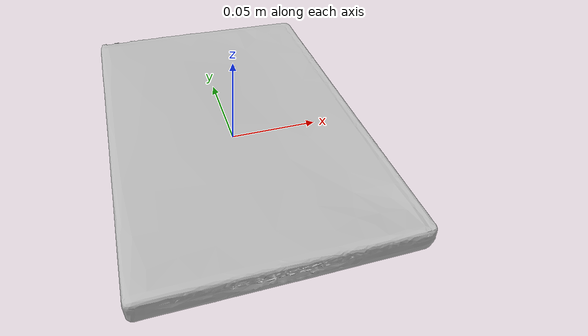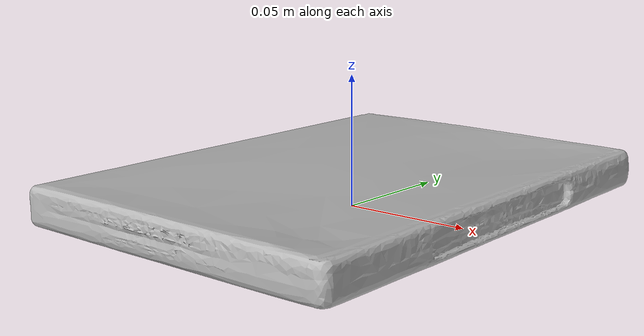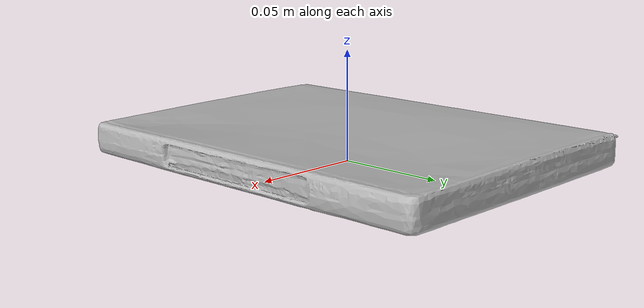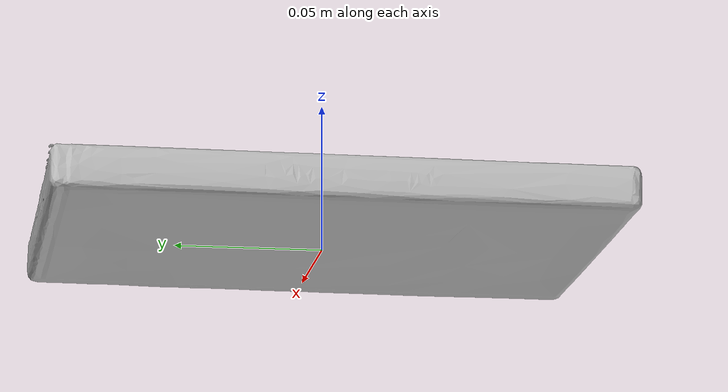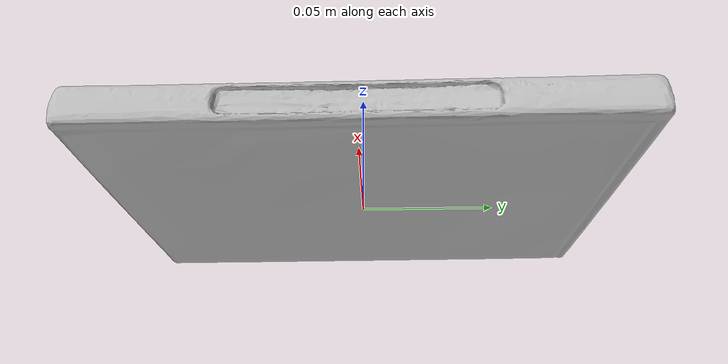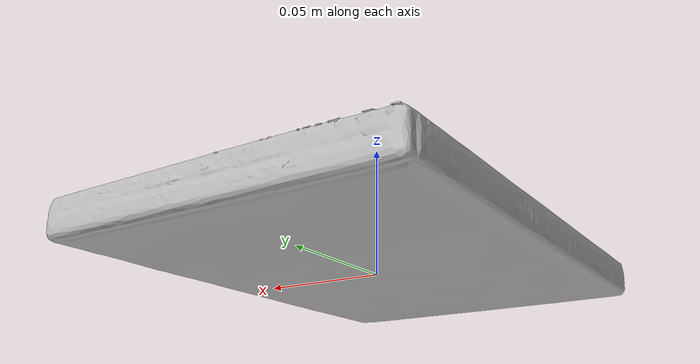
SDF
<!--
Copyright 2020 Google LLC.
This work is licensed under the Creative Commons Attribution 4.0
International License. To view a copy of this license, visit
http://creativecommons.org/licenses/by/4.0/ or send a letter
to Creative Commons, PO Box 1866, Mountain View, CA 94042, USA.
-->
<?xml version="1.0" ?>
<sdf version="1.6">
  <model name="Blue_Jasmine_Includes_Digital_Copy_UltraViolet_DVD">
    <link name="link_0">
      <visual name="visual">
        <geometry>
          <mesh>
            <uri>meshes/model.obj</uri>
          </mesh>
        </geometry>
      </visual>
      <collision name="collision_0">
        <geometry>
          <mesh>
            <uri>meshes/model.obj</uri>
          </mesh>
        </geometry>
      </collision>
    </link>
  </model>
</sdf>
